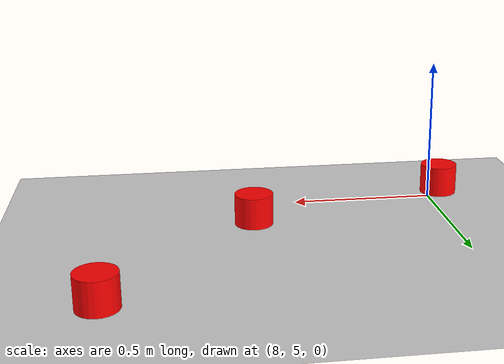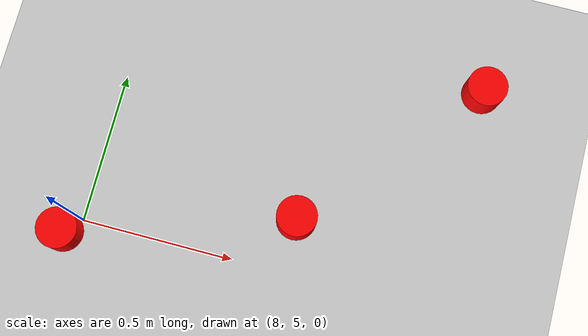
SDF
<sdf version="1.7">
 <world name="default">
  <model name="ground_plane">
   <static>1</static>
   <link name="link">
    <collision name="collision">
     <geometry><plane><normal>0 0 1</normal><size>100 100</size></plane></geometry>
     <surface>
      <contact><collide_bitmask>65535</collide_bitmask></contact>
      <friction><ode><mu>100</mu><mu2>50</mu2></ode></friction>
     </surface>
    </collision>
    <visual name="visual">
     <cast_shadows>0</cast_shadows>
     <geometry><plane><normal>0 0 1</normal><size>100 100</size></plane></geometry>
     <material>
      <script><uri>file://media/materials/scripts/gazebo.material</uri><name>Gazebo/Grey</name></script>
     </material>
    </visual>
   </link>
  </model>
  <model name="latinha_verm_clone_5_clone_0_clone_clone">
   <link name="link">
    <inertial>
     <mass>1</mass>
     <inertia><ixx>0.145833</ixx><ixy>0</ixy><ixz>0</ixz><iyy>0.145833</iyy><iyz>0</iyz><izz>0.125</izz></inertia>
    </inertial>
    <visual name="visual">
     <geometry><cylinder><radius>0.066</radius><length>0.114</length></cylinder></geometry>
     <material>
      <script><name>Gazebo/Gray</name><uri>file://media/materials/scripts/gazebo.material</uri></script>
      <shader type="pixel"><normal_map>__default__</normal_map></shader>
      <ambient>1 0 0 1</ambient>
      <diffuse>1 0 0 1</diffuse>
      <specular>0.1 0.1 0.1 1</specular>
      <emissive>0 0 0 1</emissive>
     </material>
    </visual>
    <collision name="collision">
     <geometry><cylinder><radius>0.05</radius><length>0.1</length></cylinder></geometry>
     <surface>
      <friction>
       <ode><mu>1</mu><mu2>1</mu2><fdir1>0 0 0</fdir1><slip1>0</slip1><slip2>0</slip2></ode>
       <torsional>
        <coefficient>1</coefficient>
        <patch_radius>0</patch_radius>
        <surface_radius>0</surface_radius>
        <use_patch_radius>1</use_patch_radius>
        <ode><slip>0</slip></ode>
       </torsional>
      </friction>
      <bounce><restitution_coefficient>0</restitution_coefficient><threshold>1e+06</threshold></bounce>
      <contact>
       <collide_without_contact>0</collide_without_contact>
       <collide_without_contact_bitmask>1</collide_without_contact_bitmask>
       <collide_bitmask>1</collide_bitmask>
       <ode>
        <soft_cfm>0</soft_cfm>
        <soft_erp>0.2</soft_erp>
        <kp>1e+13</kp>
        <kd>1</kd>
        <max_vel>0.01</max_vel>
        <min_depth>0</min_depth>
       </ode>
       <bullet>
        <split_impulse>1</split_impulse>
        <split_impulse_penetration_threshold>-0.01</split_impulse_penetration_threshold>
        <soft_cfm>0</soft_cfm>
        <soft_erp>0.2</soft_erp>
        <kp>1e+13</kp>
        <kd>1</kd>
       </bullet>
      </contact>
     </surface>
    </collision>
   </link>
   <static>0</static>
   <pose>7.94699 4.94916 0.04999 0 -0 6.2e-05</pose>
  </model>
  <model name="latinha_verm_clone_5_clone_0_clone_clone_0">
   <link name="link">
    <inertial>
     <mass>1</mass>
     <inertia><ixx>0.145833</ixx><ixy>0</ixy><ixz>0</ixz><iyy>0.145833</iyy><iyz>0</iyz><izz>0.125</izz></inertia>
    </inertial>
    <visual name="visual">
     <geometry><cylinder><radius>0.066</radius><length>0.114</length></cylinder></geometry>
     <material>
      <script><name>Gazebo/Gray</name><uri>file://media/materials/scripts/gazebo.material</uri></script>
      <shader type="pixel"><normal_map>__default__</normal_map></shader>
      <ambient>1 0 0 1</ambient>
      <diffuse>1 0 0 1</diffuse>
      <specular>0.1 0.1 0.1 1</specular>
      <emissive>0 0 0 1</emissive>
     </material>
    </visual>
    <collision name="collision">
     <geometry><cylinder><radius>0.05</radius><length>0.1</length></cylinder></geometry>
     <surface>
      <friction>
       <ode><mu>1</mu><mu2>1</mu2><fdir1>0 0 0</fdir1><slip1>0</slip1><slip2>0</slip2></ode>
       <torsional>
        <coefficient>1</coefficient>
        <patch_radius>0</patch_radius>
        <surface_radius>0</surface_radius>
        <use_patch_radius>1</use_patch_radius>
        <ode><slip>0</slip></ode>
       </torsional>
      </friction>
      <bounce><restitution_coefficient>0</restitution_coefficient><threshold>1e+06</threshold></bounce>
      <contact>
       <collide_without_contact>0</collide_without_contact>
       <collide_without_contact_bitmask>1</collide_without_contact_bitmask>
       <collide_bitmask>1</collide_bitmask>
       <ode>
        <soft_cfm>0</soft_cfm>
        <soft_erp>0.2</soft_erp>
        <kp>1e+13</kp>
        <kd>1</kd>
        <max_vel>0.01</max_vel>
        <min_depth>0</min_depth>
       </ode>
       <bullet>
        <split_impulse>1</split_impulse>
        <split_impulse_penetration_threshold>-0.01</split_impulse_penetration_threshold>
        <soft_cfm>0</soft_cfm>
        <soft_erp>0.2</soft_erp>
        <kp>1e+13</kp>
        <kd>1</kd>
       </bullet>
      </contact>
     </surface>
    </collision>
   </link>
   <static>0</static>
   <pose>8.66979 5.17692 0.049995 0 -0 3.1e-05</pose>
  </model>
  <model name="latinha_verm_clone_5_clone_0_clone_clone_1">
   <link name="link">
    <inertial>
     <mass>1</mass>
     <inertia><ixx>0.145833</ixx><ixy>0</ixy><ixz>0</ixz><iyy>0.145833</iyy><iyz>0</iyz><izz>0.125</izz></inertia>
    </inertial>
    <visual name="visual">
     <geometry><cylinder><radius>0.066</radius><length>0.114</length></cylinder></geometry>
     <material>
      <script><name>Gazebo/Gray</name><uri>file://media/materials/scripts/gazebo.material</uri></script>
      <shader type="pixel"><normal_map>__default__</normal_map></shader>
      <ambient>1 0 0 1</ambient>
      <diffuse>1 0 0 1</diffuse>
      <specular>0.1 0.1 0.1 1</specular>
      <emissive>0 0 0 1</emissive>
     </material>
    </visual>
    <collision name="collision">
     <geometry><cylinder><radius>0.05</radius><length>0.1</length></cylinder></geometry>
     <surface>
      <friction>
       <ode><mu>1</mu><mu2>1</mu2><fdir1>0 0 0</fdir1><slip1>0</slip1><slip2>0</slip2></ode>
       <torsional>
        <coefficient>1</coefficient>
        <patch_radius>0</patch_radius>
        <surface_radius>0</surface_radius>
        <use_patch_radius>1</use_patch_radius>
        <ode><slip>0</slip></ode>
       </torsional>
      </friction>
      <bounce><restitution_coefficient>0</restitution_coefficient><threshold>1e+06</threshold></bounce>
      <contact>
       <collide_without_contact>0</collide_without_contact>
       <collide_without_contact_bitmask>1</collide_without_contact_bitmask>
       <collide_bitmask>1</collide_bitmask>
       <ode>
        <soft_cfm>0</soft_cfm>
        <soft_erp>0.2</soft_erp>
        <kp>1e+13</kp>
        <kd>1</kd>
        <max_vel>0.01</max_vel>
        <min_depth>0</min_depth>
       </ode>
       <bullet>
        <split_impulse>1</split_impulse>
        <split_impulse_penetration_threshold>-0.01</split_impulse_penetration_threshold>
        <soft_cfm>0</soft_cfm>
        <soft_erp>0.2</soft_erp>
        <kp>1e+13</kp>
        <kd>1</kd>
       </bullet>
      </contact>
     </surface>
    </collision>
   </link>
   <static>0</static>
   <pose>9.16298 5.74437 0.049995 1e-06 -0 6.4e-05</pose>
  </model>
 </world>
</sdf>
